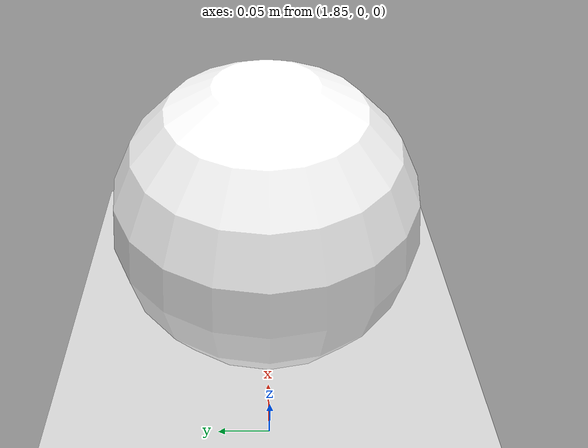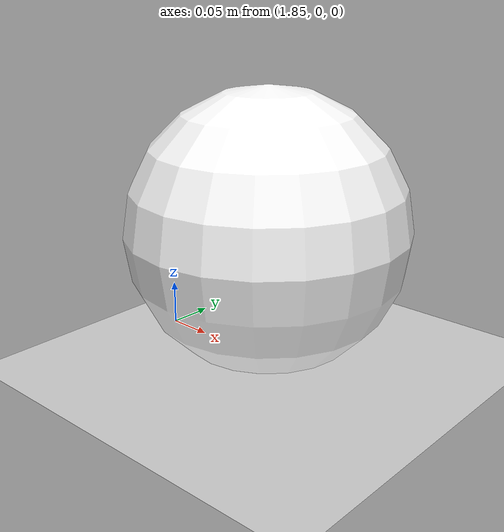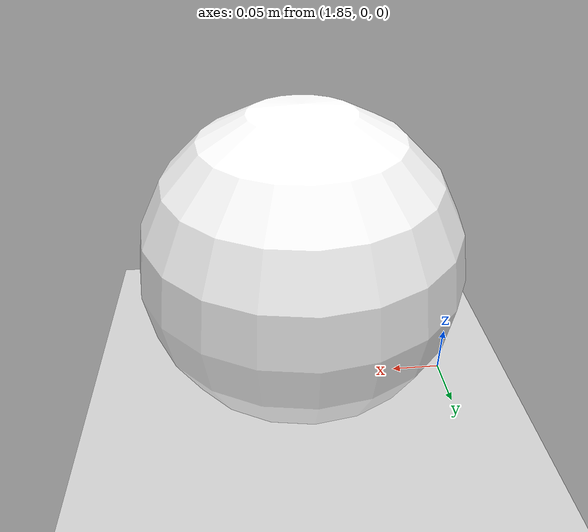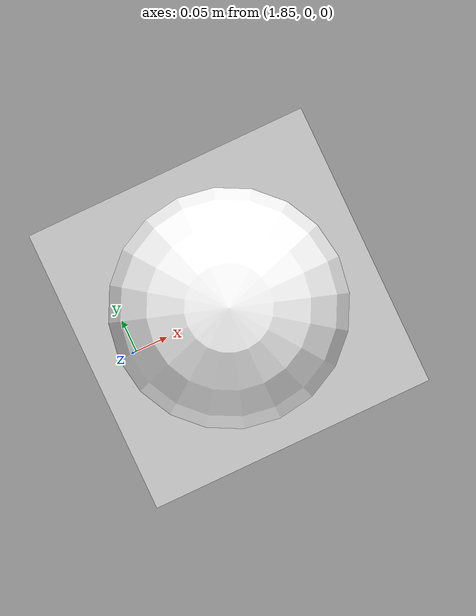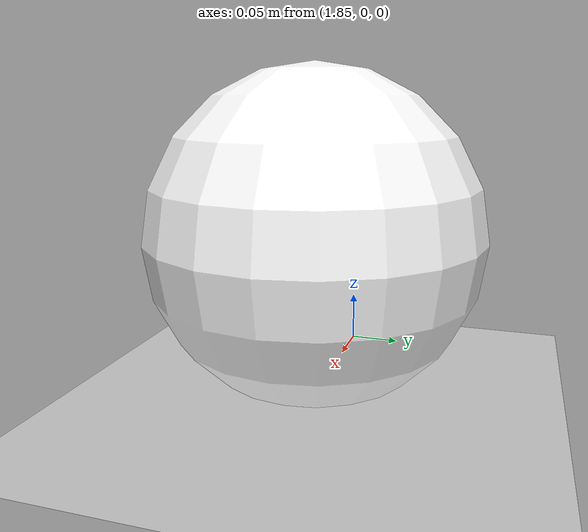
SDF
<?xml version="1.0" ?>
<sdf version="1.6">
  <world name="default">
    <include>
      <uri>model://ground_plane</uri>
    </include>
    <include>
      <uri>model://sun</uri>
    </include>

    <model name="white_ball">
      <pose>2.0 0.0 0.15 0 0 0</pose>
      <link name="link">
        <visual name="visual">
          <geometry>
            <sphere><radius>0.15</radius></sphere>
          </geometry>
          <material>
            <ambient>1 1 1 1</ambient>
            <diffuse>1 1 1 1</diffuse>
            <specular>0.1 0.1 0.1 1</specular>
          </material>
        </visual>
        <collision name="collision">
          <geometry>
            <sphere><radius>0.15</radius></sphere>
          </geometry>
        </collision>
        <inertial>
          <mass>0.1</mass>
          <inertia>
            <ixx>0.0006</ixx>
            <iyy>0.0006</iyy>
            <izz>0.0006</izz>
            <ixy>0</ixy>
            <ixz>0</ixz>
            <iyz>0</iyz>
          </inertia>
        </inertial>
      </link>
    </model>

  </world>
</sdf>
